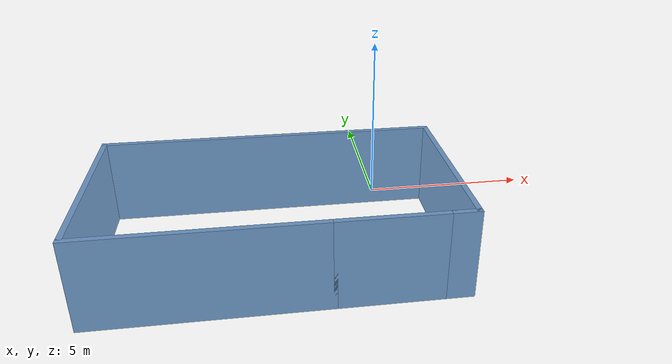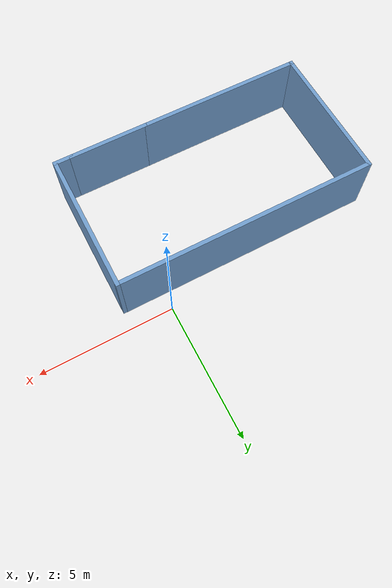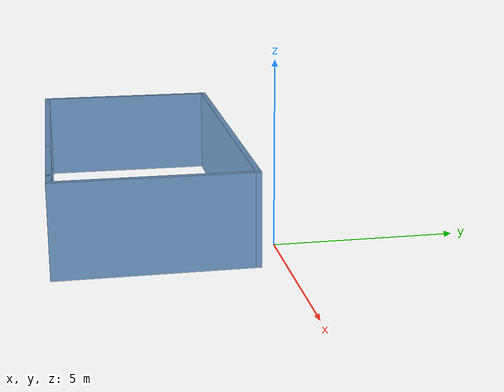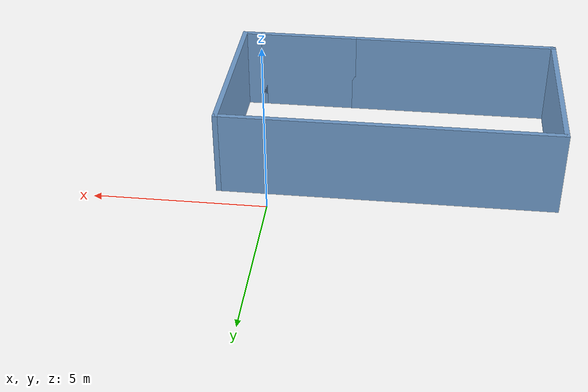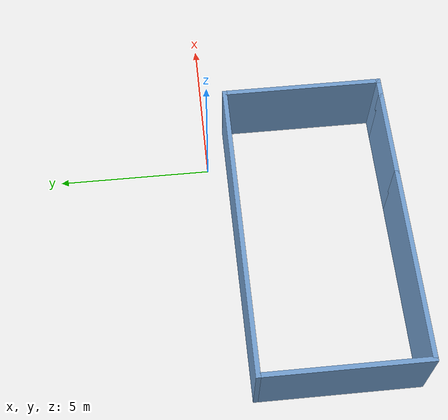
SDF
<?xml version='1.0'?>
<sdf version='1.7'>
  <model name='smaller_wall'>
    <pose>-3.29882 -2.94439 0 0 -0 0</pose>
    <link name='Wall_0'>
      <collision name='Wall_0_Collision'>
        <geometry>
          <box>
            <size>3 0.15 2.5</size>
          </box>
        </geometry>
        <pose>0 0 1.25 0 -0 0</pose>
      </collision>
      <visual name='Wall_0_Visual'>
        <pose>0 0 1.25 0 -0 0</pose>
        <geometry>
          <box>
            <size>3 0.15 2.5</size>
          </box>
        </geometry>
        <material>
          <script>
            <uri>file://media/materials/scripts/gazebo.material</uri>
            <name>Gazebo/Grey</name>
          </script>
          <ambient>0.447059 0.623529 0.811765 1</ambient>
        </material>
        <meta>
          <layer>0</layer>
        </meta>
      </visual>
      <pose>2.775 -2.86939 0 0 -0 0</pose>
    </link>
    <link name='Wall_1'>
      <collision name='Wall_1_Collision'>
        <geometry>
          <box>
            <size>0.75 0.15 2.5</size>
          </box>
        </geometry>
        <pose>0 0 1.25 0 -0 0</pose>
      </collision>
      <visual name='Wall_1_Visual'>
        <pose>0 0 1.25 0 -0 0</pose>
        <geometry>
          <box>
            <size>0.75 0.15 2.5</size>
          </box>
        </geometry>
        <material>
          <script>
            <uri>file://media/materials/scripts/gazebo.material</uri>
            <name>Gazebo/Grey</name>
          </script>
          <ambient>0.447059 0.623529 0.811765 1</ambient>
        </material>
        <meta>
          <layer>0</layer>
        </meta>
      </visual>
      <pose>4.5 -2.86939 0 0 -0 0</pose>
    </link>
    <link name='Wall_2'>
      <collision name='Wall_2_Collision'>
        <geometry>
          <box>
            <size>5.25 0.15 2.5</size>
          </box>
        </geometry>
        <pose>0 0 1.25 0 -0 0</pose>
      </collision>
      <visual name='Wall_2_Visual'>
        <pose>0 0 1.25 0 -0 0</pose>
        <geometry>
          <box>
            <size>5.25 0.15 2.5</size>
          </box>
        </geometry>
        <material>
          <script>
            <uri>file://media/materials/scripts/gazebo.material</uri>
            <name>Gazebo/Grey</name>
          </script>
          <ambient>0.447059 0.623529 0.811765 1</ambient>
        </material>
        <meta>
          <layer>0</layer>
        </meta>
      </visual>
      <pose>4.8 -0.319387 0 0 -0 1.5708</pose>
    </link>
    <link name='Wall_3'>
      <collision name='Wall_3_Collision'>
        <geometry>
          <box>
            <size>9.75 0.15 2.5</size>
          </box>
        </geometry>
        <pose>0 0 1.25 0 -0 0</pose>
      </collision>
      <visual name='Wall_3_Visual'>
        <pose>0 0 1.25 0 -0 0</pose>
        <geometry>
          <box>
            <size>9.75 0.15 2.5</size>
          </box>
        </geometry>
        <material>
          <script>
            <uri>file://media/materials/scripts/gazebo.material</uri>
            <name>Gazebo/Grey</name>
          </script>
          <ambient>0.447059 0.623529 0.811765 1</ambient>
        </material>
        <meta>
          <layer>0</layer>
        </meta>
      </visual>
      <pose>0 2.23061 0 0 -0 3.14159</pose>
    </link>
    <link name='Wall_4'>
      <collision name='Wall_4_Collision'>
        <geometry>
          <box>
            <size>5.25 0.15 2.5</size>
          </box>
        </geometry>
        <pose>0 0 1.25 0 -0 0</pose>
      </collision>
      <visual name='Wall_4_Visual'>
        <pose>0 0 1.25 0 -0 0</pose>
        <geometry>
          <box>
            <size>5.25 0.15 2.5</size>
          </box>
        </geometry>
        <material>
          <script>
            <uri>file://media/materials/scripts/gazebo.material</uri>
            <name>Gazebo/Grey</name>
          </script>
          <ambient>0.447059 0.623529 0.811765 1</ambient>
        </material>
        <meta>
          <layer>0</layer>
        </meta>
      </visual>
      <pose>-4.8 -0.319387 0 0 -0 -1.5708</pose>
    </link>
    <link name='Wall_5'>
      <collision name='Wall_5_Collision'>
        <geometry>
          <box>
            <size>6.25 0.15 2.5</size>
          </box>
        </geometry>
        <pose>0 0 1.25 0 -0 0</pose>
      </collision>
      <visual name='Wall_5_Visual'>
        <pose>0 0 1.25 0 -0 0</pose>
        <geometry>
          <box>
            <size>6.25 0.15 2.5</size>
          </box>
        </geometry>
        <material>
          <script>
            <uri>file://media/materials/scripts/gazebo.material</uri>
            <name>Gazebo/Grey</name>
          </script>
          <ambient>0.447059 0.623529 0.811765 1</ambient>
        </material>
        <meta>
          <layer>0</layer>
        </meta>
      </visual>
      <pose>-1.75 -2.86939 0 0 -0 0</pose>
    </link>
    <static>1</static>
  </model>
</sdf>
